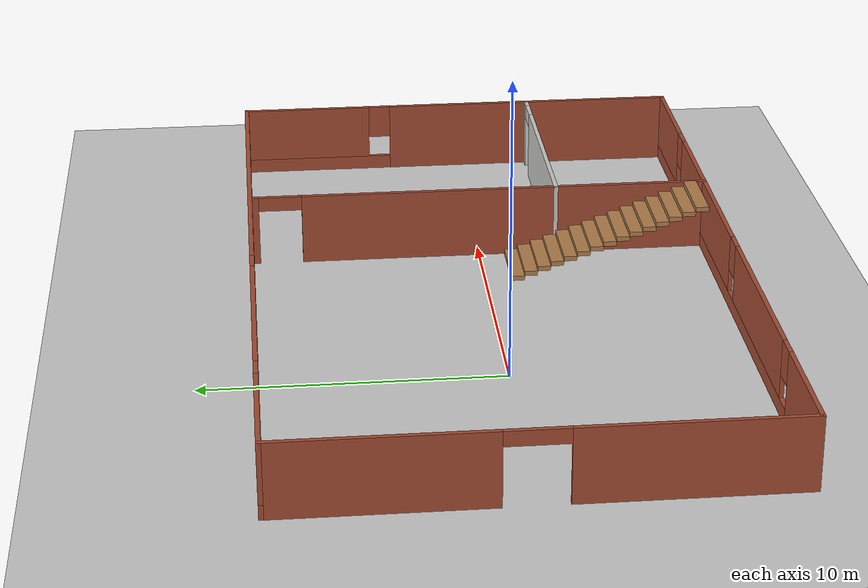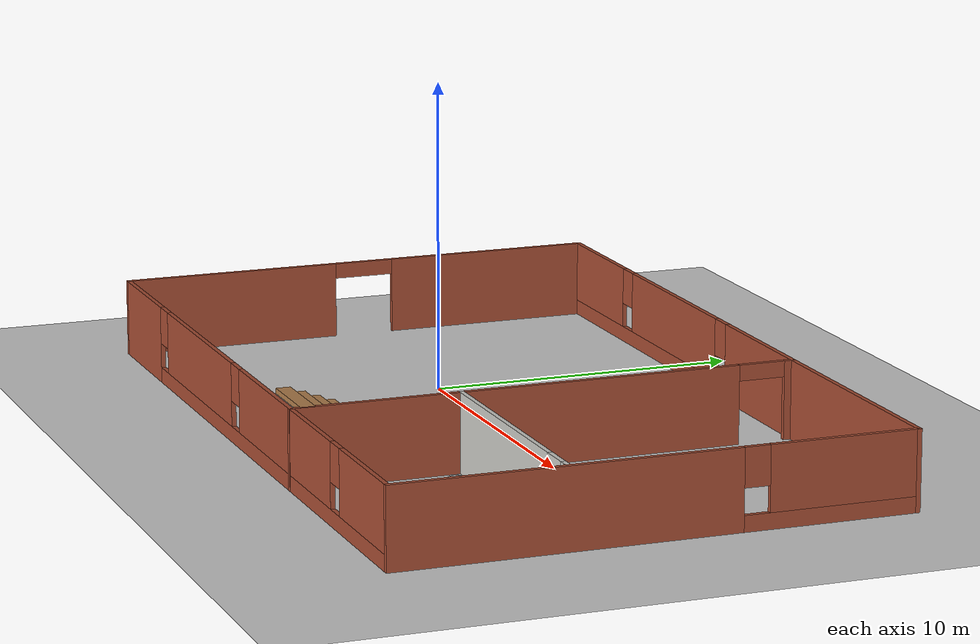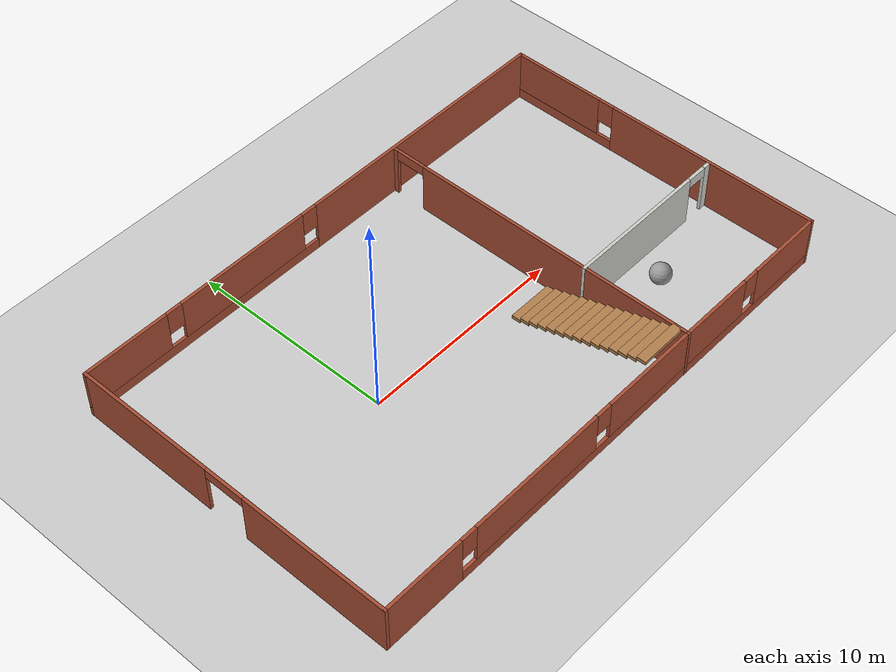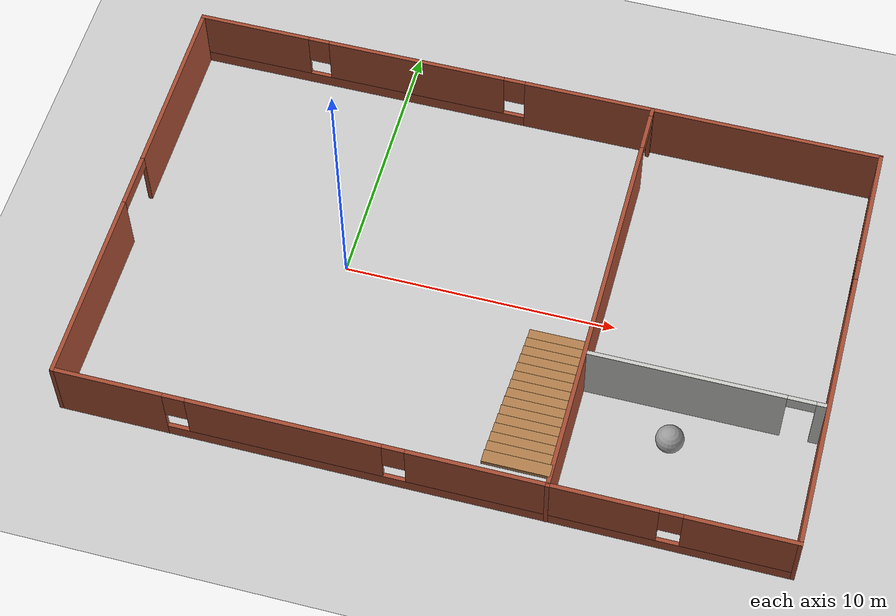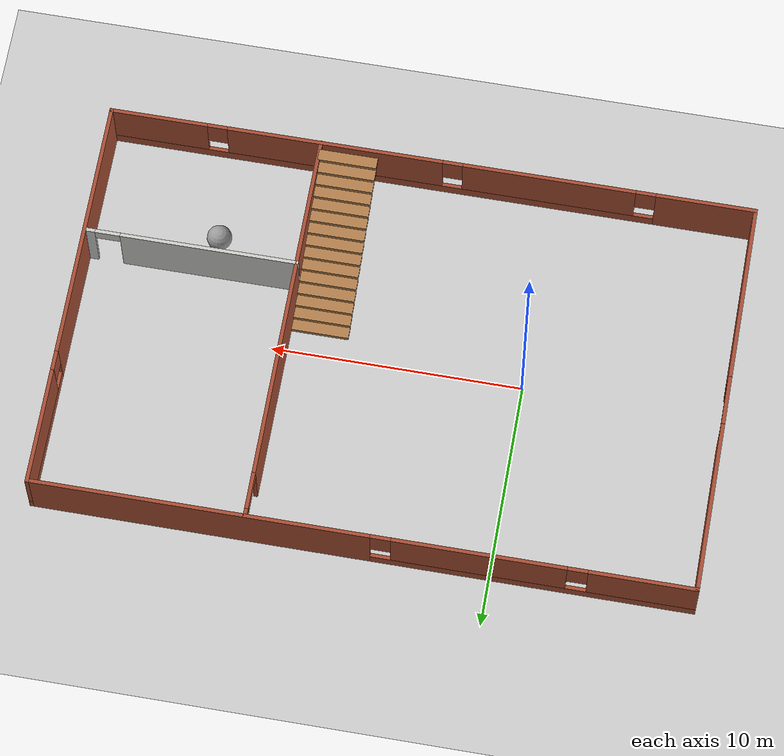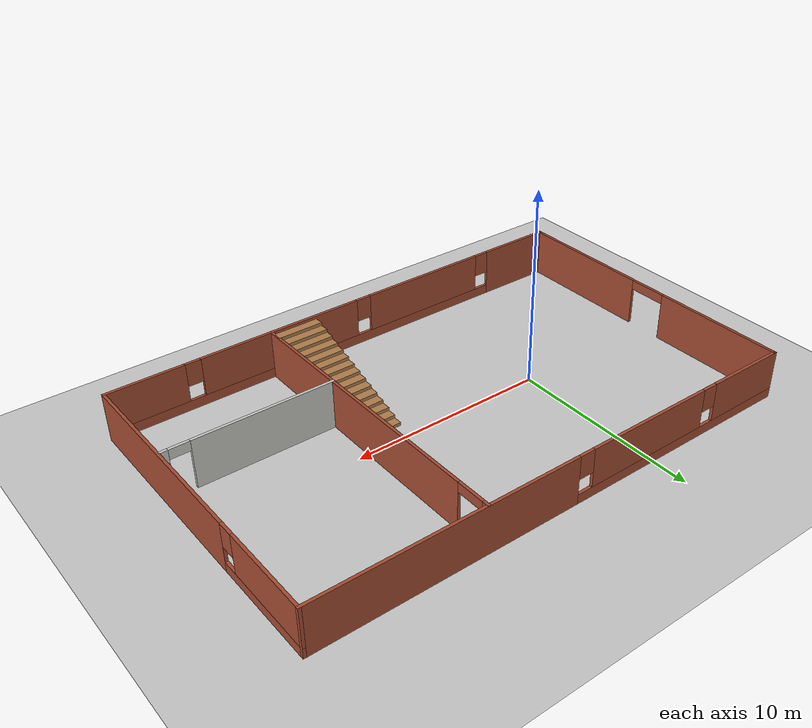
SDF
<sdf version="1.7">
 <world name="default">
  <light name="sun" type="directional">
   <pose>0 0 10 0 -0 0</pose>
   <diffuse>0.8 0.8 0.8 1</diffuse>
   <specular>0.2 0.2 0.2 1</specular>
   <attenuation>
    <range>1000</range>
    <constant>0.9</constant>
    <linear>0.01</linear>
    <quadratic>0.001</quadratic>
   </attenuation>
   <direction>-0.5 0.1 -0.9</direction>
   <spot><inner_angle>0</inner_angle><outer_angle>0</outer_angle><falloff>0</falloff></spot>
  </light>
  <model name="ground_plane">
   <static>1</static>
   <link name="link">
    <collision name="collision">
     <geometry><plane><normal>0 0 1</normal><size>100 100</size></plane></geometry>
     <surface>
      <contact><collide_bitmask>65535</collide_bitmask></contact>
      <friction><ode><mu>100</mu><mu2>50</mu2></ode></friction>
     </surface>
    </collision>
    <visual name="visual">
     <cast_shadows>0</cast_shadows>
     <geometry><plane><normal>0 0 1</normal><size>100 100</size></plane></geometry>
     <material>
      <script><uri>file://media/materials/scripts/gazebo.material</uri><name>Gazebo/Grey</name></script>
     </material>
    </visual>
   </link>
  </model>
  <gravity>0 0 -9.8</gravity>
  <magnetic_field>6e-06 2.3e-05 -4.2e-05</magnetic_field>
  <atmosphere type="adiabatic"/>
  <physics type="ode">
   <max_step_size>0.001</max_step_size>
   <real_time_factor>1</real_time_factor>
   <real_time_update_rate>1000</real_time_update_rate>
  </physics>
  <scene><ambient>0.4 0.4 0.4 1</ambient><background>0.7 0.7 0.7 1</background><shadows>1</shadows></scene>
  <spherical_coordinates>
   <surface_model>EARTH_WGS84</surface_model>
   <latitude_deg>0</latitude_deg>
   <longitude_deg>0</longitude_deg>
   <elevation>0</elevation>
   <heading_deg>0</heading_deg>
  </spherical_coordinates>
  <model name="home">
   <pose>4.99033 -0.002447 0 0 -0 0</pose>
   <link name="Stairs_0">
    <visual name="Stairs_0_Visual_0">
     <pose>3.28158 -1.12923 0.083333 0 -0 0</pose>
     <geometry><box><size>2.357 0.456758 0.166667</size></box></geometry>
     <material>
      <script><uri>file://media/materials/scripts/gazebo.material</uri><name>Gazebo/Wood</name></script>
      <ambient>1 1 1 1</ambient>
     </material>
     <meta><layer>0</layer></meta>
    </visual>
    <collision name="Stairs_0_Collision_0">
     <geometry><box><size>2.357 0.456758 0.166667</size></box></geometry>
     <pose>3.28158 -1.12923 0.083333 0 -0 0</pose>
    </collision>
    <visual name="Stairs_0_Visual_1">
     <pose>3.28158 -1.58598 0.25 0 -0 0</pose>
     <geometry><box><size>2.357 0.456758 0.166667</size></box></geometry>
     <material>
      <script><uri>file://media/materials/scripts/gazebo.material</uri><name>Gazebo/Wood</name></script>
      <ambient>1 1 1 1</ambient>
     </material>
     <meta><layer>0</layer></meta>
    </visual>
    <collision name="Stairs_0_Collision_1">
     <geometry><box><size>2.357 0.456758 0.166667</size></box></geometry>
     <pose>3.28158 -1.58598 0.25 0 -0 0</pose>
    </collision>
    <visual name="Stairs_0_Visual_2">
     <pose>3.28158 -2.04274 0.416667 0 -0 0</pose>
     <geometry><box><size>2.357 0.456758 0.166667</size></box></geometry>
     <material>
      <script><uri>file://media/materials/scripts/gazebo.material</uri><name>Gazebo/Wood</name></script>
      <ambient>1 1 1 1</ambient>
     </material>
     <meta><layer>0</layer></meta>
    </visual>
    <collision name="Stairs_0_Collision_2">
     <geometry><box><size>2.357 0.456758 0.166667</size></box></geometry>
     <pose>3.28158 -2.04274 0.416667 0 -0 0</pose>
    </collision>
    <visual name="Stairs_0_Visual_3">
     <pose>3.28158 -2.4995 0.583333 0 -0 0</pose>
     <geometry><box><size>2.357 0.456758 0.166667</size></box></geometry>
     <material>
      <script><uri>file://media/materials/scripts/gazebo.material</uri><name>Gazebo/Wood</name></script>
      <ambient>1 1 1 1</ambient>
     </material>
     <meta><layer>0</layer></meta>
    </visual>
    <collision name="Stairs_0_Collision_3">
     <geometry><box><size>2.357 0.456758 0.166667</size></box></geometry>
     <pose>3.28158 -2.4995 0.583333 0 -0 0</pose>
    </collision>
    <visual name="Stairs_0_Visual_4">
     <pose>3.28158 -2.95626 0.75 0 -0 0</pose>
     <geometry><box><size>2.357 0.456758 0.166667</size></box></geometry>
     <material>
      <script><uri>file://media/materials/scripts/gazebo.material</uri><name>Gazebo/Wood</name></script>
      <ambient>1 1 1 1</ambient>
     </material>
     <meta><layer>0</layer></meta>
    </visual>
    <collision name="Stairs_0_Collision_4">
     <geometry><box><size>2.357 0.456758 0.166667</size></box></geometry>
     <pose>3.28158 -2.95626 0.75 0 -0 0</pose>
    </collision>
    <visual name="Stairs_0_Visual_5">
     <pose>3.28158 -3.41302 0.916667 0 -0 0</pose>
     <geometry><box><size>2.357 0.456758 0.166667</size></box></geometry>
     <material>
      <script><uri>file://media/materials/scripts/gazebo.material</uri><name>Gazebo/Wood</name></script>
      <ambient>1 1 1 1</ambient>
     </material>
     <meta><layer>0</layer></meta>
    </visual>
    <collision name="Stairs_0_Collision_5">
     <geometry><box><size>2.357 0.456758 0.166667</size></box></geometry>
     <pose>3.28158 -3.41302 0.916667 0 -0 0</pose>
    </collision>
    <visual name="Stairs_0_Visual_6">
     <pose>3.28158 -3.86977 1.08333 0 -0 0</pose>
     <geometry><box><size>2.357 0.456758 0.166667</size></box></geometry>
     <material>
      <script><uri>file://media/materials/scripts/gazebo.material</uri><name>Gazebo/Wood</name></script>
      <ambient>1 1 1 1</ambient>
     </material>
     <meta><layer>0</layer></meta>
    </visual>
    <collision name="Stairs_0_Collision_6">
     <geometry><box><size>2.357 0.456758 0.166667</size></box></geometry>
     <pose>3.28158 -3.86977 1.08333 0 -0 0</pose>
    </collision>
    <visual name="Stairs_0_Visual_7">
     <pose>3.28158 -4.32653 1.25 0 -0 0</pose>
     <geometry><box><size>2.357 0.456758 0.166667</size></box></geometry>
     <material>
      <script><uri>file://media/materials/scripts/gazebo.material</uri><name>Gazebo/Wood</name></script>
      <ambient>1 1 1 1</ambient>
     </material>
     <meta><layer>0</layer></meta>
    </visual>
    <collision name="Stairs_0_Collision_7">
     <geometry><box><size>2.357 0.456758 0.166667</size></box></geometry>
     <pose>3.28158 -4.32653 1.25 0 -0 0</pose>
    </collision>
    <visual name="Stairs_0_Visual_8">
     <pose>3.28158 -4.78329 1.41667 0 -0 0</pose>
     <geometry><box><size>2.357 0.456758 0.166667</size></box></geometry>
     <material>
      <script><uri>file://media/materials/scripts/gazebo.material</uri><name>Gazebo/Wood</name></script>
      <ambient>1 1 1 1</ambient>
     </material>
     <meta><layer>0</layer></meta>
    </visual>
    <collision name="Stairs_0_Collision_8">
     <geometry><box><size>2.357 0.456758 0.166667</size></box></geometry>
     <pose>3.28158 -4.78329 1.41667 0 -0 0</pose>
    </collision>
    <visual name="Stairs_0_Visual_9">
     <pose>3.28158 -5.24005 1.58333 0 -0 0</pose>
     <geometry><box><size>2.357 0.456758 0.166667</size></box></geometry>
     <material>
      <script><uri>file://media/materials/scripts/gazebo.material</uri><name>Gazebo/Wood</name></script>
      <ambient>1 1 1 1</ambient>
     </material>
     <meta><layer>0</layer></meta>
    </visual>
    <collision name="Stairs_0_Collision_9">
     <geometry><box><size>2.357 0.456758 0.166667</size></box></geometry>
     <pose>3.28158 -5.24005 1.58333 0 -0 0</pose>
    </collision>
    <visual name="Stairs_0_Visual_10">
     <pose>3.28158 -5.69681 1.75 0 -0 0</pose>
     <geometry><box><size>2.357 0.456758 0.166667</size></box></geometry>
     <material>
      <script><uri>file://media/materials/scripts/gazebo.material</uri><name>Gazebo/Wood</name></script>
      <ambient>1 1 1 1</ambient>
     </material>
     <meta><layer>0</layer></meta>
    </visual>
    <collision name="Stairs_0_Collision_10">
     <geometry><box><size>2.357 0.456758 0.166667</size></box></geometry>
     <pose>3.28158 -5.69681 1.75 0 -0 0</pose>
    </collision>
    <visual name="Stairs_0_Visual_11">
     <pose>3.28158 -6.15356 1.91667 0 -0 0</pose>
     <geometry><box><size>2.357 0.456758 0.166667</size></box></geometry>
     <material>
      <script><uri>file://media/materials/scripts/gazebo.material</uri><name>Gazebo/Wood</name></script>
      <ambient>1 1 1 1</ambient>
     </material>
     <meta><layer>0</layer></meta>
    </visual>
    <collision name="Stairs_0_Collision_11">
     <geometry><box><size>2.357 0.456758 0.166667</size></box></geometry>
     <pose>3.28158 -6.15356 1.91667 0 -0 0</pose>
    </collision>
    <visual name="Stairs_0_Visual_12">
     <pose>3.28158 -6.61032 2.08333 0 -0 0</pose>
     <geometry><box><size>2.357 0.456758 0.166667</size></box></geometry>
     <material>
      <script><uri>file://media/materials/scripts/gazebo.material</uri><name>Gazebo/Wood</name></script>
      <ambient>1 1 1 1</ambient>
     </material>
     <meta><layer>0</layer></meta>
    </visual>
    <collision name="Stairs_0_Collision_12">
     <geometry><box><size>2.357 0.456758 0.166667</size></box></geometry>
     <pose>3.28158 -6.61032 2.08333 0 -0 0</pose>
    </collision>
    <visual name="Stairs_0_Visual_13">
     <pose>3.28158 -7.06708 2.25 0 -0 0</pose>
     <geometry><box><size>2.357 0.456758 0.166667</size></box></geometry>
     <material>
      <script><uri>file://media/materials/scripts/gazebo.material</uri><name>Gazebo/Wood</name></script>
      <ambient>1 1 1 1</ambient>
     </material>
     <meta><layer>0</layer></meta>
    </visual>
    <collision name="Stairs_0_Collision_13">
     <geometry><box><size>2.357 0.456758 0.166667</size></box></geometry>
     <pose>3.28158 -7.06708 2.25 0 -0 0</pose>
    </collision>
    <visual name="Stairs_0_Visual_14">
     <pose>3.28158 -7.52384 2.41667 0 -0 0</pose>
     <geometry><box><size>2.357 0.456758 0.166667</size></box></geometry>
     <material>
      <script><uri>file://media/materials/scripts/gazebo.material</uri><name>Gazebo/Wood</name></script>
      <ambient>1 1 1 1</ambient>
     </material>
     <meta><layer>0</layer></meta>
    </visual>
    <collision name="Stairs_0_Collision_14">
     <geometry><box><size>2.357 0.456758 0.166667</size></box></geometry>
     <pose>3.28158 -7.52384 2.41667 0 -0 0</pose>
    </collision>
   </link>
   <link name="Wall_10">
    <pose>-0 8.05458 0 0 -0 3.14159</pose>
    <visual name="Wall_10_Visual_0">
     <pose>-6.31452 0 1.25 0 -0 0</pose>
     <geometry><box><size>13.371 0.15 2.5</size></box></geometry>
     <material>
      <script><uri>file://media/materials/scripts/gazebo.material</uri><name>Gazebo/Bricks</name></script>
      <ambient>1 1 1 1</ambient>
     </material>
     <meta><layer>0</layer></meta>
    </visual>
    <collision name="Wall_10_Collision_0">
     <geometry><box><size>13.371 0.15 2.5</size></box></geometry>
     <pose>-6.31452 0 1.25 0 -0 0</pose>
    </collision>
    <visual name="Wall_10_Visual_1">
     <pose>6.68548 0 0.25 0 -0 0</pose>
     <geometry><box><size>12.629 0.15 0.5</size></box></geometry>
     <material>
      <script><uri>file://media/materials/scripts/gazebo.material</uri><name>Gazebo/Bricks</name></script>
      <ambient>1 1 1 1</ambient>
     </material>
     <meta><layer>0</layer></meta>
    </visual>
    <collision name="Wall_10_Collision_1">
     <geometry><box><size>12.629 0.15 0.5</size></box></geometry>
     <pose>6.68548 0 0.25 0 -0 0</pose>
    </collision>
    <visual name="Wall_10_Visual_2">
     <pose>4.56126 0 1.5 0 -0 0</pose>
     <geometry><box><size>6.78058 0.15 2</size></box></geometry>
     <material>
      <script><uri>file://media/materials/scripts/gazebo.material</uri><name>Gazebo/Bricks</name></script>
      <ambient>1 1 1 1</ambient>
     </material>
     <meta><layer>0</layer></meta>
    </visual>
    <collision name="Wall_10_Collision_2">
     <geometry><box><size>6.78058 0.15 2</size></box></geometry>
     <pose>4.56126 0 1.5 0 -0 0</pose>
    </collision>
    <visual name="Wall_10_Visual_3">
     <pose>10.8758 0 1.5 0 -0 0</pose>
     <geometry><box><size>4.24845 0.15 2</size></box></geometry>
     <material>
      <script><uri>file://media/materials/scripts/gazebo.material</uri><name>Gazebo/Bricks</name></script>
      <ambient>1 1 1 1</ambient>
     </material>
     <meta><layer>0</layer></meta>
    </visual>
    <collision name="Wall_10_Collision_3">
     <geometry><box><size>4.24845 0.15 2</size></box></geometry>
     <pose>10.8758 0 1.5 0 -0 0</pose>
    </collision>
    <visual name="Wall_10_Visual_4">
     <pose>0.770966 0 1.9 0 -0 0</pose>
     <geometry><box><size>0.8 0.15 1.2</size></box></geometry>
     <material>
      <script><uri>file://media/materials/scripts/gazebo.material</uri><name>Gazebo/Bricks</name></script>
      <ambient>1 1 1 1</ambient>
     </material>
     <meta><layer>0</layer></meta>
    </visual>
    <collision name="Wall_10_Collision_4">
     <geometry><box><size>0.8 0.15 1.2</size></box></geometry>
     <pose>0.770966 0 1.9 0 -0 0</pose>
    </collision>
    <visual name="Wall_10_Visual_5">
     <pose>8.35155 0 1.9 0 -0 0</pose>
     <geometry><box><size>0.8 0.15 1.2</size></box></geometry>
     <material>
      <script><uri>file://media/materials/scripts/gazebo.material</uri><name>Gazebo/Bricks</name></script>
      <ambient>1 1 1 1</ambient>
     </material>
     <meta><layer>0</layer></meta>
    </visual>
    <collision name="Wall_10_Collision_5">
     <geometry><box><size>0.8 0.15 1.2</size></box></geometry>
     <pose>8.35155 0 1.9 0 -0 0</pose>
    </collision>
   </link>
   <link name="Wall_14">
    <pose>4.45732 -0.004579 0 0 -0 1.5708</pose>
    <visual name="Wall_14_Visual_0">
     <pose>-0.933694 0 1.25 0 -0 0</pose>
     <geometry><box><size>14.3826 0.15 2.5</size></box></geometry>
     <material>
      <script><uri>file://media/materials/scripts/gazebo.material</uri><name>Gazebo/Bricks</name></script>
      <ambient>1 1 1 1</ambient>
     </material>
     <meta><layer>0</layer></meta>
    </visual>
    <collision name="Wall_14_Collision_0">
     <geometry><box><size>14.3826 0.15 2.5</size></box></geometry>
     <pose>-0.933694 0 1.25 0 -0 0</pose>
    </collision>
    <visual name="Wall_14_Visual_1">
     <pose>7.94131 0 1.25 0 -0 0</pose>
     <geometry><box><size>0.367388 0.15 2.5</size></box></geometry>
     <material>
      <script><uri>file://media/materials/scripts/gazebo.material</uri><name>Gazebo/Bricks</name></script>
      <ambient>1 1 1 1</ambient>
     </material>
     <meta><layer>0</layer></meta>
    </visual>
    <collision name="Wall_14_Collision_1">
     <geometry><box><size>0.367388 0.15 2.5</size></box></geometry>
     <pose>7.94131 0 1.25 0 -0 0</pose>
    </collision>
    <visual name="Wall_14_Visual_2">
     <pose>7.00761 0 2.25 0 -0 0</pose>
     <geometry><box><size>1.5 0.15 0.5</size></box></geometry>
     <material>
      <script><uri>file://media/materials/scripts/gazebo.material</uri><name>Gazebo/Bricks</name></script>
      <ambient>1 1 1 1</ambient>
     </material>
     <meta><layer>0</layer></meta>
    </visual>
    <collision name="Wall_14_Collision_2">
     <geometry><box><size>1.5 0.15 0.5</size></box></geometry>
     <pose>7.00761 0 2.25 0 -0 0</pose>
    </collision>
   </link>
   <link name="Wall_16">
    <pose>8.63232 -2.72811 0 0 -0 0</pose>
    <visual name="Wall_16_Visual_0">
     <pose>-0.694161 0 1.25 0 -0 0</pose>
     <geometry><box><size>7.11168 0.15 2.5</size></box></geometry>
     <material>
      <script><uri>file://media/materials/scripts/gazebo.material</uri><name>Gazebo/CeilingTiled</name></script>
      <ambient>1 1 1 1</ambient>
     </material>
     <meta><layer>0</layer></meta>
    </visual>
    <collision name="Wall_16_Collision_0">
     <geometry><box><size>7.11168 0.15 2.5</size></box></geometry>
     <pose>-0.694161 0 1.25 0 -0 0</pose>
    </collision>
    <visual name="Wall_16_Visual_1">
     <pose>4.05584 0 1.25 0 -0 0</pose>
     <geometry><box><size>0.388322 0.15 2.5</size></box></geometry>
     <material>
      <script><uri>file://media/materials/scripts/gazebo.material</uri><name>Gazebo/CeilingTiled</name></script>
      <ambient>1 1 1 1</ambient>
     </material>
     <meta><layer>0</layer></meta>
    </visual>
    <collision name="Wall_16_Collision_1">
     <geometry><box><size>0.388322 0.15 2.5</size></box></geometry>
     <pose>4.05584 0 1.25 0 -0 0</pose>
    </collision>
    <visual name="Wall_16_Visual_2">
     <pose>3.36168 0 2.25 0 -0 0</pose>
     <geometry><box><size>1 0.15 0.5</size></box></geometry>
     <material>
      <script><uri>file://media/materials/scripts/gazebo.material</uri><name>Gazebo/CeilingTiled</name></script>
      <ambient>1 1 1 1</ambient>
     </material>
     <meta><layer>0</layer></meta>
    </visual>
    <collision name="Wall_16_Collision_2">
     <geometry><box><size>1 0.15 0.5</size></box></geometry>
     <pose>3.36168 0 2.25 0 -0 0</pose>
    </collision>
   </link>
   <link name="Wall_7">
    <pose>-12.925 0.004579 0 0 -0 -1.5708</pose>
    <visual name="Wall_7_Visual_0">
     <pose>-4.64128 0 1.25 0 -0 0</pose>
     <geometry><box><size>6.96743 0.15 2.5</size></box></geometry>
     <material>
      <script><uri>file://media/materials/scripts/gazebo.material</uri><name>Gazebo/Bricks</name></script>
      <ambient>1 1 1 1</ambient>
     </material>
     <meta><layer>0</layer></meta>
    </visual>
    <collision name="Wall_7_Collision_0">
     <geometry><box><size>6.96743 0.15 2.5</size></box></geometry>
     <pose>-4.64128 0 1.25 0 -0 0</pose>
    </collision>
    <visual name="Wall_7_Visual_1">
     <pose>4.48372 0 1.25 0 -0 0</pose>
     <geometry><box><size>7.28257 0.15 2.5</size></box></geometry>
     <material>
      <script><uri>file://media/materials/scripts/gazebo.material</uri><name>Gazebo/Bricks</name></script>
      <ambient>1 1 1 1</ambient>
     </material>
     <meta><layer>0</layer></meta>
    </visual>
    <collision name="Wall_7_Collision_1">
     <geometry><box><size>7.28257 0.15 2.5</size></box></geometry>
     <pose>4.48372 0 1.25 0 -0 0</pose>
    </collision>
    <visual name="Wall_7_Visual_2">
     <pose>-0.15757 0 2.25 0 -0 0</pose>
     <geometry><box><size>2 0.15 0.5</size></box></geometry>
     <material>
      <script><uri>file://media/materials/scripts/gazebo.material</uri><name>Gazebo/Bricks</name></script>
      <ambient>1 1 1 1</ambient>
     </material>
     <meta><layer>0</layer></meta>
    </visual>
    <collision name="Wall_7_Collision_2">
     <geometry><box><size>2 0.15 0.5</size></box></geometry>
     <pose>-0.15757 0 2.25 0 -0 0</pose>
    </collision>
   </link>
   <link name="Wall_8">
    <pose>-0 -8.04542 0 0 -0 0</pose>
    <visual name="Wall_8_Visual_0">
     <pose>-10.983 0 1.25 0 -0 0</pose>
     <geometry><box><size>4.03391 0.15 2.5</size></box></geometry>
     <material>
      <script><uri>file://media/materials/scripts/gazebo.material</uri><name>Gazebo/Bricks</name></script>
      <ambient>1 1 1 1</ambient>
     </material>
     <meta><layer>0</layer></meta>
    </visual>
    <collision name="Wall_8_Collision_0">
     <geometry><box><size>4.03391 0.15 2.5</size></box></geometry>
     <pose>-10.983 0 1.25 0 -0 0</pose>
    </collision>
    <visual name="Wall_8_Visual_1">
     <pose>2.01695 0 0.25 0 -0 0</pose>
     <geometry><box><size>21.9661 0.15 0.5</size></box></geometry>
     <material>
      <script><uri>file://media/materials/scripts/gazebo.material</uri><name>Gazebo/Bricks</name></script>
      <ambient>1 1 1 1</ambient>
     </material>
     <meta><layer>0</layer></meta>
    </visual>
    <collision name="Wall_8_Collision_1">
     <geometry><box><size>21.9661 0.15 0.5</size></box></geometry>
     <pose>2.01695 0 0.25 0 -0 0</pose>
    </collision>
    <visual name="Wall_8_Visual_2">
     <pose>-4.70429 0 1.5 0 -0 0</pose>
     <geometry><box><size>6.92361 0.15 2</size></box></geometry>
     <material>
      <script><uri>file://media/materials/scripts/gazebo.material</uri><name>Gazebo/Bricks</name></script>
      <ambient>1 1 1 1</ambient>
     </material>
     <meta><layer>0</layer></meta>
    </visual>
    <collision name="Wall_8_Collision_2">
     <geometry><box><size>6.92361 0.15 2</size></box></geometry>
     <pose>-4.70429 0 1.5 0 -0 0</pose>
    </collision>
    <visual name="Wall_8_Visual_3">
     <pose>3.89699 0 1.5 0 -0 0</pose>
     <geometry><box><size>8.67894 0.15 2</size></box></geometry>
     <material>
      <script><uri>file://media/materials/scripts/gazebo.material</uri><name>Gazebo/Bricks</name></script>
      <ambient>1 1 1 1</ambient>
     </material>
     <meta><layer>0</layer></meta>
    </visual>
    <collision name="Wall_8_Collision_3">
     <geometry><box><size>8.67894 0.15 2</size></box></geometry>
     <pose>3.89699 0 1.5 0 -0 0</pose>
    </collision>
    <visual name="Wall_8_Visual_4">
     <pose>11.0182 0 1.5 0 -0 0</pose>
     <geometry><box><size>3.96354 0.15 2</size></box></geometry>
     <material>
      <script><uri>file://media/materials/scripts/gazebo.material</uri><name>Gazebo/Bricks</name></script>
      <ambient>1 1 1 1</ambient>
     </material>
     <meta><layer>0</layer></meta>
    </visual>
    <collision name="Wall_8_Collision_4">
     <geometry><box><size>3.96354 0.15 2</size></box></geometry>
     <pose>11.0182 0 1.5 0 -0 0</pose>
    </collision>
    <visual name="Wall_8_Visual_5">
     <pose>-8.56609 0 1.9 0 -0 0</pose>
     <geometry><box><size>0.8 0.15 1.2</size></box></geometry>
     <material>
      <script><uri>file://media/materials/scripts/gazebo.material</uri><name>Gazebo/Bricks</name></script>
      <ambient>1 1 1 1</ambient>
     </material>
     <meta><layer>0</layer></meta>
    </visual>
    <collision name="Wall_8_Collision_5">
     <geometry><box><size>0.8 0.15 1.2</size></box></geometry>
     <pose>-8.56609 0 1.9 0 -0 0</pose>
    </collision>
    <visual name="Wall_8_Visual_6">
     <pose>-0.842481 0 1.9 0 -0 0</pose>
     <geometry><box><size>0.8 0.15 1.2</size></box></geometry>
     <material>
      <script><uri>file://media/materials/scripts/gazebo.material</uri><name>Gazebo/Bricks</name></script>
      <ambient>1 1 1 1</ambient>
     </material>
     <meta><layer>0</layer></meta>
    </visual>
    <collision name="Wall_8_Collision_6">
     <geometry><box><size>0.8 0.15 1.2</size></box></geometry>
     <pose>-0.842481 0 1.9 0 -0 0</pose>
    </collision>
    <visual name="Wall_8_Visual_7">
     <pose>8.63646 0 1.9 0 -0 0</pose>
     <geometry><box><size>0.8 0.15 1.2</size></box></geometry>
     <material>
      <script><uri>file://media/materials/scripts/gazebo.material</uri><name>Gazebo/Bricks</name></script>
      <ambient>1 1 1 1</ambient>
     </material>
     <meta><layer>0</layer></meta>
    </visual>
    <collision name="Wall_8_Collision_7">
     <geometry><box><size>0.8 0.15 1.2</size></box></geometry>
     <pose>8.63646 0 1.9 0 -0 0</pose>
    </collision>
   </link>
   <link name="Wall_9">
    <pose>12.925 0.004579 0 0 -0 1.5708</pose>
    <visual name="Wall_9_Visual_0">
     <pose>-2.77307 0 1.25 0 -0 0</pose>
     <geometry><box><size>10.7039 0.15 2.5</size></box></geometry>
     <material>
      <script><uri>file://media/materials/scripts/gazebo.material</uri><name>Gazebo/Bricks</name></script>
      <ambient>1 1 1 1</ambient>
     </material>
     <meta><layer>0</layer></meta>
    </visual>
    <collision name="Wall_9_Collision_0">
     <geometry><box><size>10.7039 0.15 2.5</size></box></geometry>
     <pose>-2.77307 0 1.25 0 -0 0</pose>
    </collision>
    <visual name="Wall_9_Visual_1">
     <pose>5.35193 0 0.25 0 -0 0</pose>
     <geometry><box><size>5.54613 0.15 0.5</size></box></geometry>
     <material>
      <script><uri>file://media/materials/scripts/gazebo.material</uri><name>Gazebo/Bricks</name></script>
      <ambient>1 1 1 1</ambient>
     </material>
     <meta><layer>0</layer></meta>
    </visual>
    <collision name="Wall_9_Collision_1">
     <geometry><box><size>5.54613 0.15 0.5</size></box></geometry>
     <pose>5.35193 0 0.25 0 -0 0</pose>
    </collision>
    <visual name="Wall_9_Visual_2">
     <pose>5.75193 0 1.5 0 -0 0</pose>
     <geometry><box><size>4.74613 0.15 2</size></box></geometry>
     <material>
      <script><uri>file://media/materials/scripts/gazebo.material</uri><name>Gazebo/Bricks</name></script>
      <ambient>1 1 1 1</ambient>
     </material>
     <meta><layer>0</layer></meta>
    </visual>
    <collision name="Wall_9_Collision_2">
     <geometry><box><size>4.74613 0.15 2</size></box></geometry>
     <pose>5.75193 0 1.5 0 -0 0</pose>
    </collision>
    <visual name="Wall_9_Visual_3">
     <pose>2.97887 0 1.9 0 -0 0</pose>
     <geometry><box><size>0.8 0.15 1.2</size></box></geometry>
     <material>
      <script><uri>file://media/materials/scripts/gazebo.material</uri><name>Gazebo/Bricks</name></script>
      <ambient>1 1 1 1</ambient>
     </material>
     <meta><layer>0</layer></meta>
    </visual>
    <collision name="Wall_9_Collision_3">
     <geometry><box><size>0.8 0.15 1.2</size></box></geometry>
     <pose>2.97887 0 1.9 0 -0 0</pose>
    </collision>
   </link>
   <static>1</static>
  </model>
  <model name="white_ball">
   <link name="link_1">
    <inertial>
     <mass>1</mass>
     <inertia><ixx>0.1</ixx><ixy>0</ixy><ixz>0</ixz><iyy>0.1</iyy><iyz>0</iyz><izz>0.1</izz></inertia>
    </inertial>
    <visual name="visual">
     <geometry><sphere><radius>0.5</radius></sphere></geometry>
     <material>
      <lighting>1</lighting>
      <script><uri>file://media/materials/scripts/gazebo.material</uri><name>Gazebo/Grey</name></script>
      <shader type="pixel"><normal_map>__default__</normal_map></shader>
      <diffuse>1 1 1 1</diffuse>
      <ambient>1 1 1 1</ambient>
      <specular>1 1 1 1</specular>
      <emissive>1 1 1 1</emissive>
     </material>
    </visual>
    <collision name="collision">
     <geometry><sphere><radius>0.5</radius></sphere></geometry>
     <surface>
      <friction>
       <ode><mu>1</mu><mu2>1</mu2><fdir1>0 0 0</fdir1><slip1>0</slip1><slip2>0</slip2></ode>
       <torsional>
        <coefficient>1</coefficient>
        <patch_radius>0</patch_radius>
        <surface_radius>0</surface_radius>
        <use_patch_radius>1</use_patch_radius>
        <ode><slip>0</slip></ode>
       </torsional>
      </friction>
      <bounce><restitution_coefficient>0</restitution_coefficient><threshold>1e+06</threshold></bounce>
      <contact>
       <collide_without_contact>0</collide_without_contact>
       <collide_without_contact_bitmask>1</collide_without_contact_bitmask>
       <collide_bitmask>1</collide_bitmask>
       <ode>
        <soft_cfm>0</soft_cfm>
        <soft_erp>0.2</soft_erp>
        <kp>1e+13</kp>
        <kd>1</kd>
        <max_vel>0.01</max_vel>
        <min_depth>0</min_depth>
       </ode>
       <bullet>
        <split_impulse>1</split_impulse>
        <split_impulse_penetration_threshold>-0.01</split_impulse_penetration_threshold>
        <soft_cfm>0</soft_cfm>
        <soft_erp>0.2</soft_erp>
        <kp>1e+13</kp>
        <kd>1</kd>
       </bullet>
      </contact>
     </surface>
    </collision>
   </link>
   <static>0</static>
   <pose>12.88 -4.19582 0.5 0 -0 0</pose>
  </model>
 </world>
</sdf>
